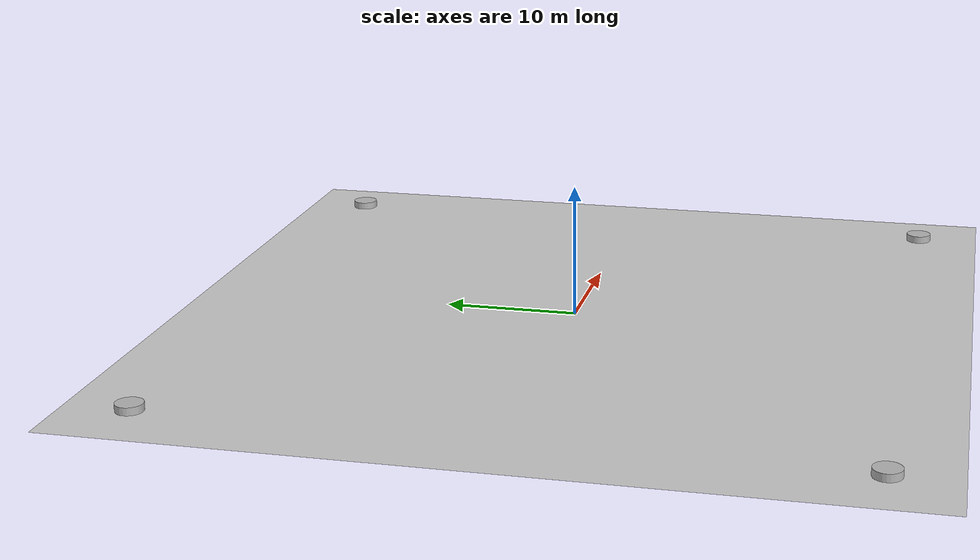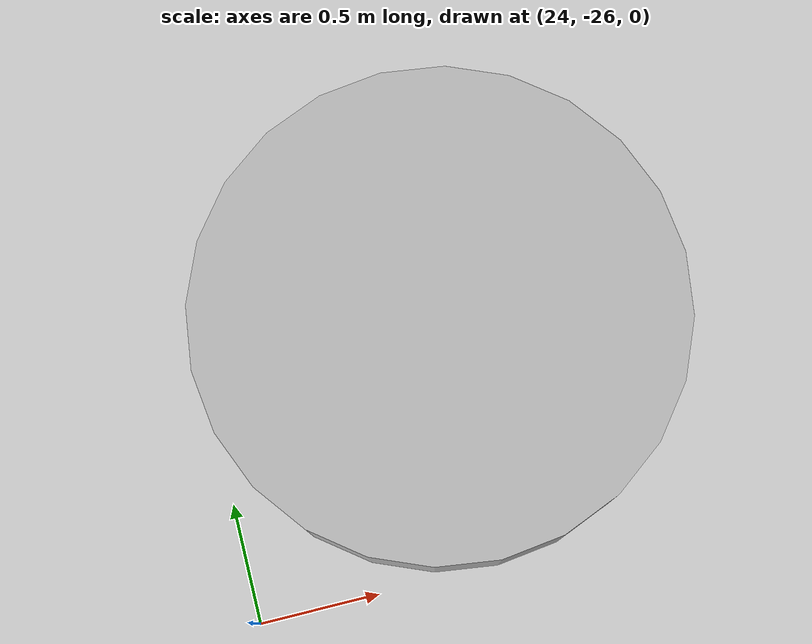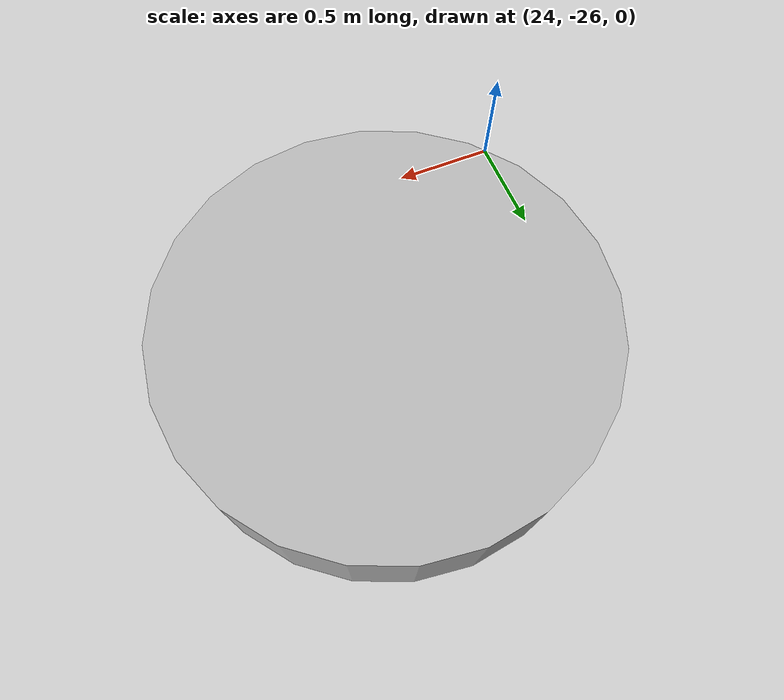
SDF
<?xml version="1.0" ?>
<sdf version="1.6">
    <world name="default">

        <!-- Light source -->
        <light type="directional" name="sun">
            <cast_shadows>true</cast_shadows>
            <pose>0 0 10 0 -0 0</pose>
            <diffuse>0.8 0.8 0.8 1</diffuse>
            <specular>0.2 0.2 0.2 1</specular>
            <direction>-0.5 -0.5 -1</direction>
        </light>

        <!-- Ground Plane -->
        <model name="ground_plane">
            <static>true</static>
            <link name="link">
                <collision name="collision">
                    <geometry>
                        <plane>
                            <normal>0 0 1</normal>
                            <size>100 100</size>
                        </plane>
                    </geometry>
                </collision>
                <visual name="visual">
                    <geometry>
                        <plane>
                            <normal>0 0 1</normal>
                            <size>100 100</size>
                        </plane>
                    </geometry>
                </visual>
            </link>
        </model>

        <!-- Pillars -->
        <model name="pillar_northwest">
            <pose>-25 25 0.0 0 0 0</pose>
            <link name="base">
                <collision name="base_collision">
                    <geometry>
                        <cylinder>
                            <radius>1</radius>
                            <length>1</length>
                        </cylinder>
                    </geometry>
                </collision>
                <visual name="base_visual">
                    <geometry>
                        <cylinder>
                            <radius>1</radius>
                            <length>1</length>
                        </cylinder>
                    </geometry>
                </visual>
            </link>
        </model>

        <model name="pillar_northeast">
            <pose>25 25 0.0 0 0 0</pose>
            <link name="base">
                <collision name="base_collision">
                    <geometry>
                        <cylinder>
                            <radius>1</radius>
                            <length>1</length>
                        </cylinder>
                    </geometry>
                </collision>
                <visual name="base_visual">
                    <geometry>
                        <cylinder>
                            <radius>1</radius>
                            <length>1</length>
                        </cylinder>
                    </geometry>
                </visual>
            </link>
        </model>

        <model name="pillar_southwest">
            <pose>-25 -25 0.0 0 0 0</pose>
            <link name="base">
                <collision name="base_collision">
                    <geometry>
                        <cylinder>
                            <radius>1</radius>
                            <length>1</length>
                        </cylinder>
                    </geometry>
                </collision>
                <visual name="base_visual">
                    <geometry>
                        <cylinder>
                            <radius>1</radius>
                            <length>1</length>
                        </cylinder>
                    </geometry>
                </visual>
            </link>
        </model>

        <model name="pillar_southeast">
            <pose>25 -25 0.0 0 0 0</pose>
            <link name="base">
                <collision name="base_collision">
                    <geometry>
                        <cylinder>
                            <radius>1</radius>
                            <length>1</length>
                        </cylinder>
                    </geometry>
                </collision>
                <visual name="base_visual">
                    <geometry>
                        <cylinder>
                            <radius>1</radius>
                            <length>1</length>
                        </cylinder>
                    </geometry>
                </visual>
            </link>
        </model>

    </world>
</sdf>
